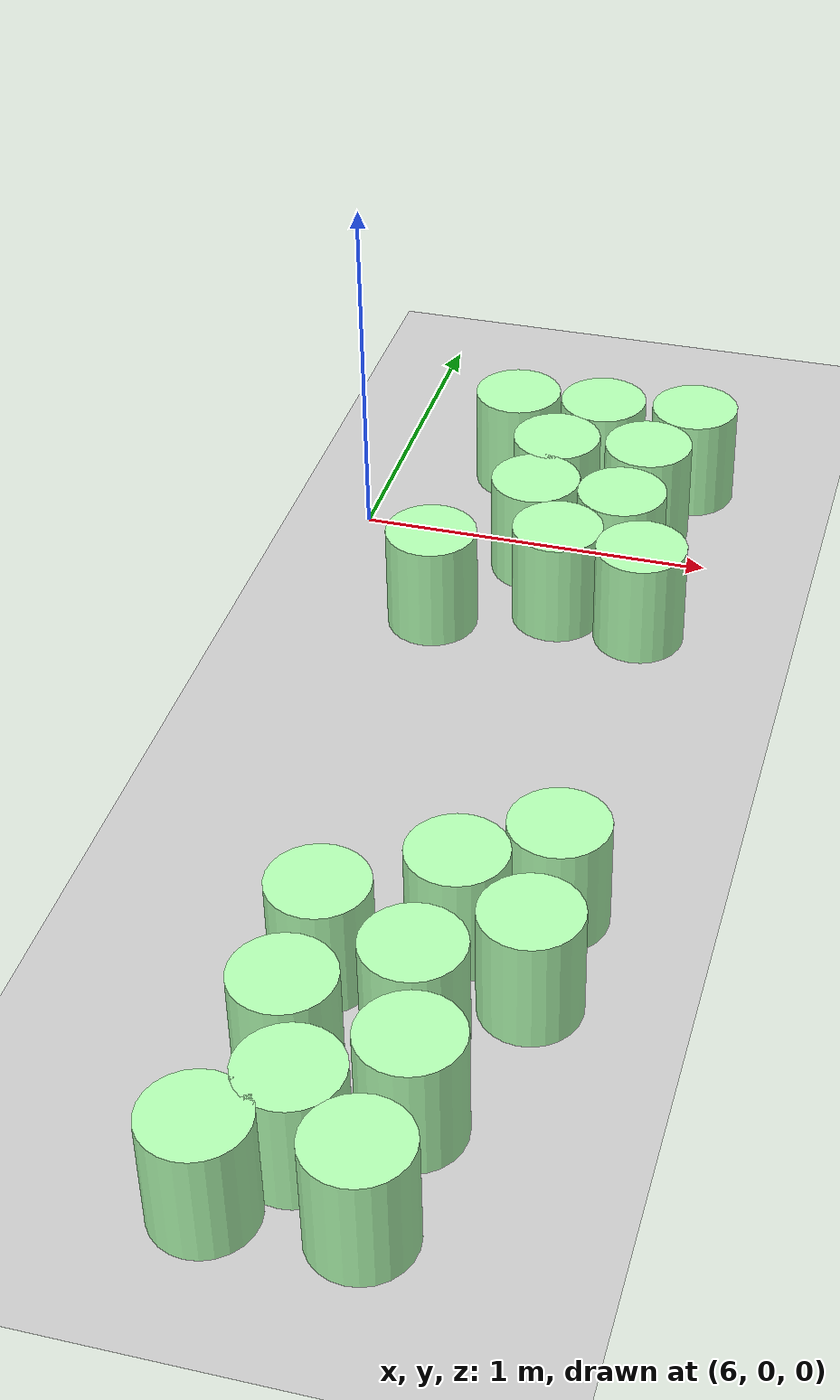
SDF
<sdf version="1.7">
 <world name="default">
  <model name="ground_plane">
   <static>1</static>
   <link name="link">
    <collision name="collision">
     <geometry><plane><normal>0 0 1</normal><size>100 100</size></plane></geometry>
     <surface><friction><ode><mu>100</mu><mu2>50</mu2></ode></friction></surface>
    </collision>
    <visual name="visual">
     <cast_shadows>0</cast_shadows>
     <geometry><plane><normal>0 0 1</normal><size>100 100</size></plane></geometry>
     <material>
      <script><uri>file://media/materials/scripts/gazebo.material</uri><name>Gazebo/Grey</name></script>
     </material>
    </visual>
   </link>
  </model>
  <model name="mhz_y_25_30_clone_29_clone_0">
   <link name="link">
    <inertial>
     <mass>1</mass>
     <inertia><ixx>0.145833</ixx><ixy>0</ixy><ixz>0</ixz><iyy>0.145833</iyy><iyz>0</iyz><izz>0.125</izz></inertia>
    </inertial>
    <visual name="visual">
     <geometry><cylinder><radius>0.125</radius><length>0.3</length></cylinder></geometry>
     <material>
      <script><name>Gazebo/Grey</name><uri>file://media/materials/scripts/gazebo.material</uri></script>
      <shader type="pixel"><normal_map>__default__</normal_map></shader>
      <ambient>0 1 0 0</ambient>
      <diffuse>0.7 1 0.7 1</diffuse>
      <specular>0.01 0.01 0.01 1</specular>
      <emissive>0 0 0 1</emissive>
     </material>
    </visual>
    <collision name="collision">
     <geometry><cylinder><radius>0.125</radius><length>0.3</length></cylinder></geometry>
     <surface>
      <friction>
       <ode><mu>1</mu><mu2>1</mu2><fdir1>0 0 0</fdir1><slip1>0</slip1><slip2>0</slip2></ode>
       <torsional>
        <coefficient>1</coefficient>
        <patch_radius>0</patch_radius>
        <surface_radius>0</surface_radius>
        <use_patch_radius>1</use_patch_radius>
        <ode><slip>0</slip></ode>
       </torsional>
      </friction>
      <bounce><restitution_coefficient>0</restitution_coefficient><threshold>1e+06</threshold></bounce>
      <contact>
       <collide_without_contact>0</collide_without_contact>
       <collide_without_contact_bitmask>1</collide_without_contact_bitmask>
       <collide_bitmask>1</collide_bitmask>
       <ode>
        <soft_cfm>0</soft_cfm>
        <soft_erp>0.2</soft_erp>
        <kp>1e+13</kp>
        <kd>1</kd>
        <max_vel>0.01</max_vel>
        <min_depth>0</min_depth>
       </ode>
       <bullet>
        <split_impulse>1</split_impulse>
        <split_impulse_penetration_threshold>-0.01</split_impulse_penetration_threshold>
        <soft_cfm>0</soft_cfm>
        <soft_erp>0.2</soft_erp>
        <kp>1e+13</kp>
        <kd>1</kd>
       </bullet>
      </contact>
     </surface>
    </collision>
   </link>
   <static>1</static>
   <pose>6.36504 0.343388 0.14679 0 -0 0</pose>
  </model>
  <model name="mhz_y_25_30_clone_29_clone_clone">
   <link name="link">
    <inertial>
     <mass>1</mass>
     <inertia><ixx>0.145833</ixx><ixy>0</ixy><ixz>0</ixz><iyy>0.145833</iyy><iyz>0</iyz><izz>0.125</izz></inertia>
    </inertial>
    <visual name="visual">
     <geometry><cylinder><radius>0.125</radius><length>0.3</length></cylinder></geometry>
     <material>
      <script><name>Gazebo/Grey</name><uri>file://media/materials/scripts/gazebo.material</uri></script>
      <shader type="pixel"><normal_map>__default__</normal_map></shader>
      <ambient>0 1 0 0</ambient>
      <diffuse>0.7 1 0.7 1</diffuse>
      <specular>0.01 0.01 0.01 1</specular>
      <emissive>0 0 0 1</emissive>
     </material>
    </visual>
    <collision name="collision">
     <geometry><cylinder><radius>0.125</radius><length>0.3</length></cylinder></geometry>
     <surface>
      <friction>
       <ode><mu>1</mu><mu2>1</mu2><fdir1>0 0 0</fdir1><slip1>0</slip1><slip2>0</slip2></ode>
       <torsional>
        <coefficient>1</coefficient>
        <patch_radius>0</patch_radius>
        <surface_radius>0</surface_radius>
        <use_patch_radius>1</use_patch_radius>
        <ode><slip>0</slip></ode>
       </torsional>
      </friction>
      <bounce><restitution_coefficient>0</restitution_coefficient><threshold>1e+06</threshold></bounce>
      <contact>
       <collide_without_contact>0</collide_without_contact>
       <collide_without_contact_bitmask>1</collide_without_contact_bitmask>
       <collide_bitmask>1</collide_bitmask>
       <ode>
        <soft_cfm>0</soft_cfm>
        <soft_erp>0.2</soft_erp>
        <kp>1e+13</kp>
        <kd>1</kd>
        <max_vel>0.01</max_vel>
        <min_depth>0</min_depth>
       </ode>
       <bullet>
        <split_impulse>1</split_impulse>
        <split_impulse_penetration_threshold>-0.01</split_impulse_penetration_threshold>
        <soft_cfm>0</soft_cfm>
        <soft_erp>0.2</soft_erp>
        <kp>1e+13</kp>
        <kd>1</kd>
       </bullet>
      </contact>
     </surface>
    </collision>
   </link>
   <static>1</static>
   <pose>6.31499 -0.426117 0.14679 0 -0 0</pose>
  </model>
  <model name="mhz_y_25_30_clone_29_clone_clone_clone">
   <link name="link">
    <inertial>
     <mass>1</mass>
     <inertia><ixx>0.145833</ixx><ixy>0</ixy><ixz>0</ixz><iyy>0.145833</iyy><iyz>0</iyz><izz>0.125</izz></inertia>
    </inertial>
    <visual name="visual">
     <geometry><cylinder><radius>0.125</radius><length>0.3</length></cylinder></geometry>
     <material>
      <script><name>Gazebo/Grey</name><uri>file://media/materials/scripts/gazebo.material</uri></script>
      <shader type="pixel"><normal_map>__default__</normal_map></shader>
      <ambient>0 1 0 0</ambient>
      <diffuse>0.7 1 0.7 1</diffuse>
      <specular>0.01 0.01 0.01 1</specular>
      <emissive>0 0 0 1</emissive>
     </material>
    </visual>
    <collision name="collision">
     <geometry><cylinder><radius>0.125</radius><length>0.3</length></cylinder></geometry>
     <surface>
      <friction>
       <ode><mu>1</mu><mu2>1</mu2><fdir1>0 0 0</fdir1><slip1>0</slip1><slip2>0</slip2></ode>
       <torsional>
        <coefficient>1</coefficient>
        <patch_radius>0</patch_radius>
        <surface_radius>0</surface_radius>
        <use_patch_radius>1</use_patch_radius>
        <ode><slip>0</slip></ode>
       </torsional>
      </friction>
      <bounce><restitution_coefficient>0</restitution_coefficient><threshold>1e+06</threshold></bounce>
      <contact>
       <collide_without_contact>0</collide_without_contact>
       <collide_without_contact_bitmask>1</collide_without_contact_bitmask>
       <collide_bitmask>1</collide_bitmask>
       <ode>
        <soft_cfm>0</soft_cfm>
        <soft_erp>0.2</soft_erp>
        <kp>1e+13</kp>
        <kd>1</kd>
        <max_vel>0.01</max_vel>
        <min_depth>0</min_depth>
       </ode>
       <bullet>
        <split_impulse>1</split_impulse>
        <split_impulse_penetration_threshold>-0.01</split_impulse_penetration_threshold>
        <soft_cfm>0</soft_cfm>
        <soft_erp>0.2</soft_erp>
        <kp>1e+13</kp>
        <kd>1</kd>
       </bullet>
      </contact>
     </surface>
    </collision>
   </link>
   <static>1</static>
   <pose>6.53399 0.127689 0.14679 0 -0 0</pose>
  </model>
  <model name="mhz_y_25_30_clone_29_clone_clone_clone_0">
   <link name="link">
    <inertial>
     <mass>1</mass>
     <inertia><ixx>0.145833</ixx><ixy>0</ixy><ixz>0</ixz><iyy>0.145833</iyy><iyz>0</iyz><izz>0.125</izz></inertia>
    </inertial>
    <visual name="visual">
     <geometry><cylinder><radius>0.125</radius><length>0.3</length></cylinder></geometry>
     <material>
      <script><name>Gazebo/Grey</name><uri>file://media/materials/scripts/gazebo.material</uri></script>
      <shader type="pixel"><normal_map>__default__</normal_map></shader>
      <ambient>0 1 0 0</ambient>
      <diffuse>0.7 1 0.7 1</diffuse>
      <specular>0.01 0.01 0.01 1</specular>
      <emissive>0 0 0 1</emissive>
     </material>
    </visual>
    <collision name="collision">
     <geometry><cylinder><radius>0.125</radius><length>0.3</length></cylinder></geometry>
     <surface>
      <friction>
       <ode><mu>1</mu><mu2>1</mu2><fdir1>0 0 0</fdir1><slip1>0</slip1><slip2>0</slip2></ode>
       <torsional>
        <coefficient>1</coefficient>
        <patch_radius>0</patch_radius>
        <surface_radius>0</surface_radius>
        <use_patch_radius>1</use_patch_radius>
        <ode><slip>0</slip></ode>
       </torsional>
      </friction>
      <bounce><restitution_coefficient>0</restitution_coefficient><threshold>1e+06</threshold></bounce>
      <contact>
       <collide_without_contact>0</collide_without_contact>
       <collide_without_contact_bitmask>1</collide_without_contact_bitmask>
       <collide_bitmask>1</collide_bitmask>
       <ode>
        <soft_cfm>0</soft_cfm>
        <soft_erp>0.2</soft_erp>
        <kp>1e+13</kp>
        <kd>1</kd>
        <max_vel>0.01</max_vel>
        <min_depth>0</min_depth>
       </ode>
       <bullet>
        <split_impulse>1</split_impulse>
        <split_impulse_penetration_threshold>-0.01</split_impulse_penetration_threshold>
        <soft_cfm>0</soft_cfm>
        <soft_erp>0.2</soft_erp>
        <kp>1e+13</kp>
        <kd>1</kd>
       </bullet>
      </contact>
     </surface>
    </collision>
   </link>
   <static>1</static>
   <pose>6.5279 -0.101579 0.14679 0 -0 0</pose>
  </model>
  <model name="mhz_y_25_30_clone_29_clone_clone_clone_1">
   <link name="link">
    <inertial>
     <mass>1</mass>
     <inertia><ixx>0.145833</ixx><ixy>0</ixy><ixz>0</ixz><iyy>0.145833</iyy><iyz>0</iyz><izz>0.125</izz></inertia>
    </inertial>
    <visual name="visual">
     <geometry><cylinder><radius>0.125</radius><length>0.3</length></cylinder></geometry>
     <material>
      <script><name>Gazebo/Grey</name><uri>file://media/materials/scripts/gazebo.material</uri></script>
      <shader type="pixel"><normal_map>__default__</normal_map></shader>
      <ambient>0 1 0 0</ambient>
      <diffuse>0.7 1 0.7 1</diffuse>
      <specular>0.01 0.01 0.01 1</specular>
      <emissive>0 0 0 1</emissive>
     </material>
    </visual>
    <collision name="collision">
     <geometry><cylinder><radius>0.125</radius><length>0.3</length></cylinder></geometry>
     <surface>
      <friction>
       <ode><mu>1</mu><mu2>1</mu2><fdir1>0 0 0</fdir1><slip1>0</slip1><slip2>0</slip2></ode>
       <torsional>
        <coefficient>1</coefficient>
        <patch_radius>0</patch_radius>
        <surface_radius>0</surface_radius>
        <use_patch_radius>1</use_patch_radius>
        <ode><slip>0</slip></ode>
       </torsional>
      </friction>
      <bounce><restitution_coefficient>0</restitution_coefficient><threshold>1e+06</threshold></bounce>
      <contact>
       <collide_without_contact>0</collide_without_contact>
       <collide_without_contact_bitmask>1</collide_without_contact_bitmask>
       <collide_bitmask>1</collide_bitmask>
       <ode>
        <soft_cfm>0</soft_cfm>
        <soft_erp>0.2</soft_erp>
        <kp>1e+13</kp>
        <kd>1</kd>
        <max_vel>0.01</max_vel>
        <min_depth>0</min_depth>
       </ode>
       <bullet>
        <split_impulse>1</split_impulse>
        <split_impulse_penetration_threshold>-0.01</split_impulse_penetration_threshold>
        <soft_cfm>0</soft_cfm>
        <soft_erp>0.2</soft_erp>
        <kp>1e+13</kp>
        <kd>1</kd>
       </bullet>
      </contact>
     </surface>
    </collision>
   </link>
   <static>1</static>
   <pose>6.61987 0.35872 0.14679 0 -0 0</pose>
  </model>
  <model name="mhz_y_25_30_clone_29_clone_clone_clone_1_clone">
   <link name="link">
    <inertial>
     <mass>1</mass>
     <inertia><ixx>0.145833</ixx><ixy>0</ixy><ixz>0</ixz><iyy>0.145833</iyy><iyz>0</iyz><izz>0.125</izz></inertia>
    </inertial>
    <visual name="visual">
     <geometry><cylinder><radius>0.125</radius><length>0.3</length></cylinder></geometry>
     <material>
      <script><name>Gazebo/Grey</name><uri>file://media/materials/scripts/gazebo.material</uri></script>
      <shader type="pixel"><normal_map>__default__</normal_map></shader>
      <ambient>0 1 0 0</ambient>
      <diffuse>0.7 1 0.7 1</diffuse>
      <specular>0.01 0.01 0.01 1</specular>
      <emissive>0 0 0 1</emissive>
     </material>
    </visual>
    <collision name="collision">
     <geometry><cylinder><radius>0.125</radius><length>0.3</length></cylinder></geometry>
     <surface>
      <friction>
       <ode><mu>1</mu><mu2>1</mu2><fdir1>0 0 0</fdir1><slip1>0</slip1><slip2>0</slip2></ode>
       <torsional>
        <coefficient>1</coefficient>
        <patch_radius>0</patch_radius>
        <surface_radius>0</surface_radius>
        <use_patch_radius>1</use_patch_radius>
        <ode><slip>0</slip></ode>
       </torsional>
      </friction>
      <bounce><restitution_coefficient>0</restitution_coefficient><threshold>1e+06</threshold></bounce>
      <contact>
       <collide_without_contact>0</collide_without_contact>
       <collide_without_contact_bitmask>1</collide_without_contact_bitmask>
       <collide_bitmask>1</collide_bitmask>
       <ode>
        <soft_cfm>0</soft_cfm>
        <soft_erp>0.2</soft_erp>
        <kp>1e+13</kp>
        <kd>1</kd>
        <max_vel>0.01</max_vel>
        <min_depth>0</min_depth>
       </ode>
       <bullet>
        <split_impulse>1</split_impulse>
        <split_impulse_penetration_threshold>-0.01</split_impulse_penetration_threshold>
        <soft_cfm>0</soft_cfm>
        <soft_erp>0.2</soft_erp>
        <kp>1e+13</kp>
        <kd>1</kd>
       </bullet>
      </contact>
     </surface>
    </collision>
   </link>
   <static>1</static>
   <pose>6.79759 0.1525 0.14679 0 -0 0</pose>
  </model>
  <model name="mhz_y_25_30_clone_29_clone_clone_clone_1_clone_1">
   <link name="link">
    <inertial>
     <mass>1</mass>
     <inertia><ixx>0.145833</ixx><ixy>0</ixy><ixz>0</ixz><iyy>0.145833</iyy><iyz>0</iyz><izz>0.125</izz></inertia>
    </inertial>
    <visual name="visual">
     <geometry><cylinder><radius>0.125</radius><length>0.3</length></cylinder></geometry>
     <material>
      <script><name>Gazebo/Grey</name><uri>file://media/materials/scripts/gazebo.material</uri></script>
      <shader type="pixel"><normal_map>__default__</normal_map></shader>
      <ambient>0 1 0 0</ambient>
      <diffuse>0.7 1 0.7 1</diffuse>
      <specular>0.01 0.01 0.01 1</specular>
      <emissive>0 0 0 1</emissive>
     </material>
    </visual>
    <collision name="collision">
     <geometry><cylinder><radius>0.125</radius><length>0.3</length></cylinder></geometry>
     <surface>
      <friction>
       <ode><mu>1</mu><mu2>1</mu2><fdir1>0 0 0</fdir1><slip1>0</slip1><slip2>0</slip2></ode>
       <torsional>
        <coefficient>1</coefficient>
        <patch_radius>0</patch_radius>
        <surface_radius>0</surface_radius>
        <use_patch_radius>1</use_patch_radius>
        <ode><slip>0</slip></ode>
       </torsional>
      </friction>
      <bounce><restitution_coefficient>0</restitution_coefficient><threshold>1e+06</threshold></bounce>
      <contact>
       <collide_without_contact>0</collide_without_contact>
       <collide_without_contact_bitmask>1</collide_without_contact_bitmask>
       <collide_bitmask>1</collide_bitmask>
       <ode>
        <soft_cfm>0</soft_cfm>
        <soft_erp>0.2</soft_erp>
        <kp>1e+13</kp>
        <kd>1</kd>
        <max_vel>0.01</max_vel>
        <min_depth>0</min_depth>
       </ode>
       <bullet>
        <split_impulse>1</split_impulse>
        <split_impulse_penetration_threshold>-0.01</split_impulse_penetration_threshold>
        <soft_cfm>0</soft_cfm>
        <soft_erp>0.2</soft_erp>
        <kp>1e+13</kp>
        <kd>1</kd>
       </bullet>
      </contact>
     </surface>
    </collision>
   </link>
   <static>1</static>
   <pose>6.64393 -0.321376 0.14679 0 -0 0</pose>
  </model>
  <model name="mhz_y_25_30_clone_29_clone_clone_clone_1_clone_2">
   <link name="link">
    <inertial>
     <mass>1</mass>
     <inertia><ixx>0.145833</ixx><ixy>0</ixy><ixz>0</ixz><iyy>0.145833</iyy><iyz>0</iyz><izz>0.125</izz></inertia>
    </inertial>
    <visual name="visual">
     <geometry><cylinder><radius>0.125</radius><length>0.3</length></cylinder></geometry>
     <material>
      <script><name>Gazebo/Grey</name><uri>file://media/materials/scripts/gazebo.material</uri></script>
      <shader type="pixel"><normal_map>__default__</normal_map></shader>
      <ambient>0 1 0 0</ambient>
      <diffuse>0.7 1 0.7 1</diffuse>
      <specular>0.01 0.01 0.01 1</specular>
      <emissive>0 0 0 1</emissive>
     </material>
    </visual>
    <collision name="collision">
     <geometry><cylinder><radius>0.125</radius><length>0.3</length></cylinder></geometry>
     <surface>
      <friction>
       <ode><mu>1</mu><mu2>1</mu2><fdir1>0 0 0</fdir1><slip1>0</slip1><slip2>0</slip2></ode>
       <torsional>
        <coefficient>1</coefficient>
        <patch_radius>0</patch_radius>
        <surface_radius>0</surface_radius>
        <use_patch_radius>1</use_patch_radius>
        <ode><slip>0</slip></ode>
       </torsional>
      </friction>
      <bounce><restitution_coefficient>0</restitution_coefficient><threshold>1e+06</threshold></bounce>
      <contact>
       <collide_without_contact>0</collide_without_contact>
       <collide_without_contact_bitmask>1</collide_without_contact_bitmask>
       <collide_bitmask>1</collide_bitmask>
       <ode>
        <soft_cfm>0</soft_cfm>
        <soft_erp>0.2</soft_erp>
        <kp>1e+13</kp>
        <kd>1</kd>
        <max_vel>0.01</max_vel>
        <min_depth>0</min_depth>
       </ode>
       <bullet>
        <split_impulse>1</split_impulse>
        <split_impulse_penetration_threshold>-0.01</split_impulse_penetration_threshold>
        <soft_cfm>0</soft_cfm>
        <soft_erp>0.2</soft_erp>
        <kp>1e+13</kp>
        <kd>1</kd>
       </bullet>
      </contact>
     </surface>
    </collision>
   </link>
   <static>1</static>
   <pose>6.77671 -0.108143 0.14679 0 -0 0</pose>
  </model>
  <model name="mhz_y_25_30_clone_29_clone_clone_clone_1_clone_2_clone">
   <link name="link">
    <inertial>
     <mass>1</mass>
     <inertia><ixx>0.145833</ixx><ixy>0</ixy><ixz>0</ixz><iyy>0.145833</iyy><iyz>0</iyz><izz>0.125</izz></inertia>
    </inertial>
    <visual name="visual">
     <geometry><cylinder><radius>0.125</radius><length>0.3</length></cylinder></geometry>
     <material>
      <script><name>Gazebo/Grey</name><uri>file://media/materials/scripts/gazebo.material</uri></script>
      <shader type="pixel"><normal_map>__default__</normal_map></shader>
      <ambient>0 1 0 0</ambient>
      <diffuse>0.7 1 0.7 1</diffuse>
      <specular>0.01 0.01 0.01 1</specular>
      <emissive>0 0 0 1</emissive>
     </material>
    </visual>
    <collision name="collision">
     <geometry><cylinder><radius>0.125</radius><length>0.3</length></cylinder></geometry>
     <surface>
      <friction>
       <ode><mu>1</mu><mu2>1</mu2><fdir1>0 0 0</fdir1><slip1>0</slip1><slip2>0</slip2></ode>
       <torsional>
        <coefficient>1</coefficient>
        <patch_radius>0</patch_radius>
        <surface_radius>0</surface_radius>
        <use_patch_radius>1</use_patch_radius>
        <ode><slip>0</slip></ode>
       </torsional>
      </friction>
      <bounce><restitution_coefficient>0</restitution_coefficient><threshold>1e+06</threshold></bounce>
      <contact>
       <collide_without_contact>0</collide_without_contact>
       <collide_without_contact_bitmask>1</collide_without_contact_bitmask>
       <collide_bitmask>1</collide_bitmask>
       <ode>
        <soft_cfm>0</soft_cfm>
        <soft_erp>0.2</soft_erp>
        <kp>1e+13</kp>
        <kd>1</kd>
        <max_vel>0.01</max_vel>
        <min_depth>0</min_depth>
       </ode>
       <bullet>
        <split_impulse>1</split_impulse>
        <split_impulse_penetration_threshold>-0.01</split_impulse_penetration_threshold>
        <soft_cfm>0</soft_cfm>
        <soft_erp>0.2</soft_erp>
        <kp>1e+13</kp>
        <kd>1</kd>
       </bullet>
      </contact>
     </surface>
    </collision>
   </link>
   <static>1</static>
   <pose>6.88858 0.385365 0.14679 0 -0 0</pose>
  </model>
  <model name="mhz_y_25_30_clone_29_clone_clone_clone_1_clone_2_clone_11">
   <link name="link">
    <inertial>
     <mass>1</mass>
     <inertia><ixx>0.145833</ixx><ixy>0</ixy><ixz>0</ixz><iyy>0.145833</iyy><iyz>0</iyz><izz>0.125</izz></inertia>
    </inertial>
    <visual name="visual">
     <geometry><cylinder><radius>0.125</radius><length>0.3</length></cylinder></geometry>
     <material>
      <script><name>Gazebo/Grey</name><uri>file://media/materials/scripts/gazebo.material</uri></script>
      <shader type="pixel"><normal_map>__default__</normal_map></shader>
      <ambient>0 1 0 0</ambient>
      <diffuse>0.7 1 0.7 1</diffuse>
      <specular>0.01 0.01 0.01 1</specular>
      <emissive>0 0 0 1</emissive>
     </material>
    </visual>
    <collision name="collision">
     <geometry><cylinder><radius>0.125</radius><length>0.3</length></cylinder></geometry>
     <surface>
      <friction>
       <ode><mu>1</mu><mu2>1</mu2><fdir1>0 0 0</fdir1><slip1>0</slip1><slip2>0</slip2></ode>
       <torsional>
        <coefficient>1</coefficient>
        <patch_radius>0</patch_radius>
        <surface_radius>0</surface_radius>
        <use_patch_radius>1</use_patch_radius>
        <ode><slip>0</slip></ode>
       </torsional>
      </friction>
      <bounce><restitution_coefficient>0</restitution_coefficient><threshold>1e+06</threshold></bounce>
      <contact>
       <collide_without_contact>0</collide_without_contact>
       <collide_without_contact_bitmask>1</collide_without_contact_bitmask>
       <collide_bitmask>1</collide_bitmask>
       <ode>
        <soft_cfm>0</soft_cfm>
        <soft_erp>0.2</soft_erp>
        <kp>1e+13</kp>
        <kd>1</kd>
        <max_vel>0.01</max_vel>
        <min_depth>0</min_depth>
       </ode>
       <bullet>
        <split_impulse>1</split_impulse>
        <split_impulse_penetration_threshold>-0.01</split_impulse_penetration_threshold>
        <soft_cfm>0</soft_cfm>
        <soft_erp>0.2</soft_erp>
        <kp>1e+13</kp>
        <kd>1</kd>
       </bullet>
      </contact>
     </surface>
    </collision>
   </link>
   <static>1</static>
   <pose>6.88488 -0.359497 0.14679 0 -0 0</pose>
  </model>
  <model name="mhz_y_25_30_clone_29_clone_clone_clone_1_clone_2_clone_8_clone_clone_clone_0_clone_1_clone_clone_0_clone_0_clone_clone_1_clone">
   <link name="link">
    <inertial>
     <mass>1</mass>
     <inertia><ixx>0.145833</ixx><ixy>0</ixy><ixz>0</ixz><iyy>0.145833</iyy><iyz>0</iyz><izz>0.125</izz></inertia>
    </inertial>
    <visual name="visual">
     <geometry><cylinder><radius>0.125</radius><length>0.3</length></cylinder></geometry>
     <material>
      <script><name>Gazebo/Grey</name><uri>file://media/materials/scripts/gazebo.material</uri></script>
      <shader type="pixel"><normal_map>__default__</normal_map></shader>
      <ambient>0 1 0 0</ambient>
      <diffuse>0.7 1 0.7 1</diffuse>
      <specular>0.01 0.01 0.01 1</specular>
      <emissive>0 0 0 1</emissive>
     </material>
    </visual>
    <collision name="collision">
     <geometry><cylinder><radius>0.125</radius><length>0.3</length></cylinder></geometry>
     <surface>
      <friction>
       <ode><mu>1</mu><mu2>1</mu2><fdir1>0 0 0</fdir1><slip1>0</slip1><slip2>0</slip2></ode>
       <torsional>
        <coefficient>1</coefficient>
        <patch_radius>0</patch_radius>
        <surface_radius>0</surface_radius>
        <use_patch_radius>1</use_patch_radius>
        <ode><slip>0</slip></ode>
       </torsional>
      </friction>
      <bounce><restitution_coefficient>0</restitution_coefficient><threshold>1e+06</threshold></bounce>
      <contact>
       <collide_without_contact>0</collide_without_contact>
       <collide_without_contact_bitmask>1</collide_without_contact_bitmask>
       <collide_bitmask>1</collide_bitmask>
       <ode>
        <soft_cfm>0</soft_cfm>
        <soft_erp>0.2</soft_erp>
        <kp>1e+13</kp>
        <kd>1</kd>
        <max_vel>0.01</max_vel>
        <min_depth>0</min_depth>
       </ode>
       <bullet>
        <split_impulse>1</split_impulse>
        <split_impulse_penetration_threshold>-0.01</split_impulse_penetration_threshold>
        <soft_cfm>0</soft_cfm>
        <soft_erp>0.2</soft_erp>
        <kp>1e+13</kp>
        <kd>1</kd>
       </bullet>
      </contact>
     </surface>
    </collision>
   </link>
   <static>1</static>
   <pose>6.45314 -1.83193 0.14679 0 -0 0</pose>
  </model>
  <model name="mhz_y_25_30_clone_29_clone_clone_clone_1_clone_2_clone_8_clone_clone_clone_0_clone_1_clone_clone_0_clone_0_clone_clone_1_clone_0">
   <link name="link">
    <inertial>
     <mass>1</mass>
     <inertia><ixx>0.145833</ixx><ixy>0</ixy><ixz>0</ixz><iyy>0.145833</iyy><iyz>0</iyz><izz>0.125</izz></inertia>
    </inertial>
    <visual name="visual">
     <geometry><cylinder><radius>0.125</radius><length>0.3</length></cylinder></geometry>
     <material>
      <script><name>Gazebo/Grey</name><uri>file://media/materials/scripts/gazebo.material</uri></script>
      <shader type="pixel"><normal_map>__default__</normal_map></shader>
      <ambient>0 1 0 0</ambient>
      <diffuse>0.7 1 0.7 1</diffuse>
      <specular>0.01 0.01 0.01 1</specular>
      <emissive>0 0 0 1</emissive>
     </material>
    </visual>
    <collision name="collision">
     <geometry><cylinder><radius>0.125</radius><length>0.3</length></cylinder></geometry>
     <surface>
      <friction>
       <ode><mu>1</mu><mu2>1</mu2><fdir1>0 0 0</fdir1><slip1>0</slip1><slip2>0</slip2></ode>
       <torsional>
        <coefficient>1</coefficient>
        <patch_radius>0</patch_radius>
        <surface_radius>0</surface_radius>
        <use_patch_radius>1</use_patch_radius>
        <ode><slip>0</slip></ode>
       </torsional>
      </friction>
      <bounce><restitution_coefficient>0</restitution_coefficient><threshold>1e+06</threshold></bounce>
      <contact>
       <collide_without_contact>0</collide_without_contact>
       <collide_without_contact_bitmask>1</collide_without_contact_bitmask>
       <collide_bitmask>1</collide_bitmask>
       <ode>
        <soft_cfm>0</soft_cfm>
        <soft_erp>0.2</soft_erp>
        <kp>1e+13</kp>
        <kd>1</kd>
        <max_vel>0.01</max_vel>
        <min_depth>0</min_depth>
       </ode>
       <bullet>
        <split_impulse>1</split_impulse>
        <split_impulse_penetration_threshold>-0.01</split_impulse_penetration_threshold>
        <soft_cfm>0</soft_cfm>
        <soft_erp>0.2</soft_erp>
        <kp>1e+13</kp>
        <kd>1</kd>
       </bullet>
      </contact>
     </surface>
    </collision>
   </link>
   <static>1</static>
   <pose>6.46979 -2.12704 0.14679 0 -0 0</pose>
  </model>
  <model name="mhz_y_25_30_clone_29_clone_clone_clone_1_clone_2_clone_8_clone_clone_clone_0_clone_1_clone_clone_0_clone_0_clone_clone_1_clone_clone">
   <link name="link">
    <inertial>
     <mass>1</mass>
     <inertia><ixx>0.145833</ixx><ixy>0</ixy><ixz>0</ixz><iyy>0.145833</iyy><iyz>0</iyz><izz>0.125</izz></inertia>
    </inertial>
    <visual name="visual">
     <geometry><cylinder><radius>0.125</radius><length>0.3</length></cylinder></geometry>
     <material>
      <script><name>Gazebo/Grey</name><uri>file://media/materials/scripts/gazebo.material</uri></script>
      <shader type="pixel"><normal_map>__default__</normal_map></shader>
      <ambient>0 1 0 0</ambient>
      <diffuse>0.7 1 0.7 1</diffuse>
      <specular>0.01 0.01 0.01 1</specular>
      <emissive>0 0 0 1</emissive>
     </material>
    </visual>
    <collision name="collision">
     <geometry><cylinder><radius>0.125</radius><length>0.3</length></cylinder></geometry>
     <surface>
      <friction>
       <ode><mu>1</mu><mu2>1</mu2><fdir1>0 0 0</fdir1><slip1>0</slip1><slip2>0</slip2></ode>
       <torsional>
        <coefficient>1</coefficient>
        <patch_radius>0</patch_radius>
        <surface_radius>0</surface_radius>
        <use_patch_radius>1</use_patch_radius>
        <ode><slip>0</slip></ode>
       </torsional>
      </friction>
      <bounce><restitution_coefficient>0</restitution_coefficient><threshold>1e+06</threshold></bounce>
      <contact>
       <collide_without_contact>0</collide_without_contact>
       <collide_without_contact_bitmask>1</collide_without_contact_bitmask>
       <collide_bitmask>1</collide_bitmask>
       <ode>
        <soft_cfm>0</soft_cfm>
        <soft_erp>0.2</soft_erp>
        <kp>1e+13</kp>
        <kd>1</kd>
        <max_vel>0.01</max_vel>
        <min_depth>0</min_depth>
       </ode>
       <bullet>
        <split_impulse>1</split_impulse>
        <split_impulse_penetration_threshold>-0.01</split_impulse_penetration_threshold>
        <soft_cfm>0</soft_cfm>
        <soft_erp>0.2</soft_erp>
        <kp>1e+13</kp>
        <kd>1</kd>
       </bullet>
      </contact>
     </surface>
    </collision>
   </link>
   <static>1</static>
   <pose>6.56998 -2.3781 0.14679 0 -0 0</pose>
  </model>
  <model name="mhz_y_25_30_clone_29_clone_clone_clone_1_clone_2_clone_8_clone_clone_clone_0_clone_1_clone_clone_0_clone_0_clone_clone_1_clone_clone_clone">
   <link name="link">
    <inertial>
     <mass>1</mass>
     <inertia><ixx>0.145833</ixx><ixy>0</ixy><ixz>0</ixz><iyy>0.145833</iyy><iyz>0</iyz><izz>0.125</izz></inertia>
    </inertial>
    <visual name="visual">
     <geometry><cylinder><radius>0.125</radius><length>0.3</length></cylinder></geometry>
     <material>
      <script><name>Gazebo/Grey</name><uri>file://media/materials/scripts/gazebo.material</uri></script>
      <shader type="pixel"><normal_map>__default__</normal_map></shader>
      <ambient>0 1 0 0</ambient>
      <diffuse>0.7 1 0.7 1</diffuse>
      <specular>0.01 0.01 0.01 1</specular>
      <emissive>0 0 0 1</emissive>
     </material>
    </visual>
    <collision name="collision">
     <geometry><cylinder><radius>0.125</radius><length>0.3</length></cylinder></geometry>
     <surface>
      <friction>
       <ode><mu>1</mu><mu2>1</mu2><fdir1>0 0 0</fdir1><slip1>0</slip1><slip2>0</slip2></ode>
       <torsional>
        <coefficient>1</coefficient>
        <patch_radius>0</patch_radius>
        <surface_radius>0</surface_radius>
        <use_patch_radius>1</use_patch_radius>
        <ode><slip>0</slip></ode>
       </torsional>
      </friction>
      <bounce><restitution_coefficient>0</restitution_coefficient><threshold>1e+06</threshold></bounce>
      <contact>
       <collide_without_contact>0</collide_without_contact>
       <collide_without_contact_bitmask>1</collide_without_contact_bitmask>
       <collide_bitmask>1</collide_bitmask>
       <ode>
        <soft_cfm>0</soft_cfm>
        <soft_erp>0.2</soft_erp>
        <kp>1e+13</kp>
        <kd>1</kd>
        <max_vel>0.01</max_vel>
        <min_depth>0</min_depth>
       </ode>
       <bullet>
        <split_impulse>1</split_impulse>
        <split_impulse_penetration_threshold>-0.01</split_impulse_penetration_threshold>
        <soft_cfm>0</soft_cfm>
        <soft_erp>0.2</soft_erp>
        <kp>1e+13</kp>
        <kd>1</kd>
       </bullet>
      </contact>
     </surface>
    </collision>
   </link>
   <static>1</static>
   <pose>6.71442 -1.96517 0.14679 0 -0 0</pose>
  </model>
  <model name="mhz_y_25_30_clone_29_clone_clone_clone_1_clone_2_clone_8_clone_clone_clone_0_clone_1_clone_clone_0_clone_0_clone_clone_1_clone_clone_clone_0">
   <link name="link">
    <inertial>
     <mass>1</mass>
     <inertia><ixx>0.145833</ixx><ixy>0</ixy><ixz>0</ixz><iyy>0.145833</iyy><iyz>0</iyz><izz>0.125</izz></inertia>
    </inertial>
    <visual name="visual">
     <geometry><cylinder><radius>0.125</radius><length>0.3</length></cylinder></geometry>
     <material>
      <script><name>Gazebo/Grey</name><uri>file://media/materials/scripts/gazebo.material</uri></script>
      <shader type="pixel"><normal_map>__default__</normal_map></shader>
      <ambient>0 1 0 0</ambient>
      <diffuse>0.7 1 0.7 1</diffuse>
      <specular>0.01 0.01 0.01 1</specular>
      <emissive>0 0 0 1</emissive>
     </material>
    </visual>
    <collision name="collision">
     <geometry><cylinder><radius>0.125</radius><length>0.3</length></cylinder></geometry>
     <surface>
      <friction>
       <ode><mu>1</mu><mu2>1</mu2><fdir1>0 0 0</fdir1><slip1>0</slip1><slip2>0</slip2></ode>
       <torsional>
        <coefficient>1</coefficient>
        <patch_radius>0</patch_radius>
        <surface_radius>0</surface_radius>
        <use_patch_radius>1</use_patch_radius>
        <ode><slip>0</slip></ode>
       </torsional>
      </friction>
      <bounce><restitution_coefficient>0</restitution_coefficient><threshold>1e+06</threshold></bounce>
      <contact>
       <collide_without_contact>0</collide_without_contact>
       <collide_without_contact_bitmask>1</collide_without_contact_bitmask>
       <collide_bitmask>1</collide_bitmask>
       <ode>
        <soft_cfm>0</soft_cfm>
        <soft_erp>0.2</soft_erp>
        <kp>1e+13</kp>
        <kd>1</kd>
        <max_vel>0.01</max_vel>
        <min_depth>0</min_depth>
       </ode>
       <bullet>
        <split_impulse>1</split_impulse>
        <split_impulse_penetration_threshold>-0.01</split_impulse_penetration_threshold>
        <soft_cfm>0</soft_cfm>
        <soft_erp>0.2</soft_erp>
        <kp>1e+13</kp>
        <kd>1</kd>
       </bullet>
      </contact>
     </surface>
    </collision>
   </link>
   <static>1</static>
   <pose>6.72799 -1.65281 0.14679 0 -0 0</pose>
  </model>
  <model name="mhz_y_25_30_clone_29_clone_clone_clone_1_clone_2_clone_8_clone_clone_clone_0_clone_1_clone_clone_0_clone_0_clone_clone_1_clone_clone_clone_0_clone">
   <link name="link">
    <inertial>
     <mass>1</mass>
     <inertia><ixx>0.145833</ixx><ixy>0</ixy><ixz>0</ixz><iyy>0.145833</iyy><iyz>0</iyz><izz>0.125</izz></inertia>
    </inertial>
    <visual name="visual">
     <geometry><cylinder><radius>0.125</radius><length>0.3</length></cylinder></geometry>
     <material>
      <script><name>Gazebo/Grey</name><uri>file://media/materials/scripts/gazebo.material</uri></script>
      <shader type="pixel"><normal_map>__default__</normal_map></shader>
      <ambient>0 1 0 0</ambient>
      <diffuse>0.7 1 0.7 1</diffuse>
      <specular>0.01 0.01 0.01 1</specular>
      <emissive>0 0 0 1</emissive>
     </material>
    </visual>
    <collision name="collision">
     <geometry><cylinder><radius>0.125</radius><length>0.3</length></cylinder></geometry>
     <surface>
      <friction>
       <ode><mu>1</mu><mu2>1</mu2><fdir1>0 0 0</fdir1><slip1>0</slip1><slip2>0</slip2></ode>
       <torsional>
        <coefficient>1</coefficient>
        <patch_radius>0</patch_radius>
        <surface_radius>0</surface_radius>
        <use_patch_radius>1</use_patch_radius>
        <ode><slip>0</slip></ode>
       </torsional>
      </friction>
      <bounce><restitution_coefficient>0</restitution_coefficient><threshold>1e+06</threshold></bounce>
      <contact>
       <collide_without_contact>0</collide_without_contact>
       <collide_without_contact_bitmask>1</collide_without_contact_bitmask>
       <collide_bitmask>1</collide_bitmask>
       <ode>
        <soft_cfm>0</soft_cfm>
        <soft_erp>0.2</soft_erp>
        <kp>1e+13</kp>
        <kd>1</kd>
        <max_vel>0.01</max_vel>
        <min_depth>0</min_depth>
       </ode>
       <bullet>
        <split_impulse>1</split_impulse>
        <split_impulse_penetration_threshold>-0.01</split_impulse_penetration_threshold>
        <soft_cfm>0</soft_cfm>
        <soft_erp>0.2</soft_erp>
        <kp>1e+13</kp>
        <kd>1</kd>
       </bullet>
      </contact>
     </surface>
    </collision>
   </link>
   <static>1</static>
   <pose>6.7845 -2.22514 0.14679 0 -0 0</pose>
  </model>
  <model name="mhz_y_25_30_clone_29_clone_clone_clone_1_clone_2_clone_8_clone_clone_clone_0_clone_1_clone_clone_0_clone_0_clone_clone_1_clone_clone_clone_clone">
   <link name="link">
    <inertial>
     <mass>1</mass>
     <inertia><ixx>0.145833</ixx><ixy>0</ixy><ixz>0</ixz><iyy>0.145833</iyy><iyz>0</iyz><izz>0.125</izz></inertia>
    </inertial>
    <visual name="visual">
     <geometry><cylinder><radius>0.125</radius><length>0.3</length></cylinder></geometry>
     <material>
      <script><name>Gazebo/Grey</name><uri>file://media/materials/scripts/gazebo.material</uri></script>
      <shader type="pixel"><normal_map>__default__</normal_map></shader>
      <ambient>0 1 0 0</ambient>
      <diffuse>0.7 1 0.7 1</diffuse>
      <specular>0.01 0.01 0.01 1</specular>
      <emissive>0 0 0 1</emissive>
     </material>
    </visual>
    <collision name="collision">
     <geometry><cylinder><radius>0.125</radius><length>0.3</length></cylinder></geometry>
     <surface>
      <friction>
       <ode><mu>1</mu><mu2>1</mu2><fdir1>0 0 0</fdir1><slip1>0</slip1><slip2>0</slip2></ode>
       <torsional>
        <coefficient>1</coefficient>
        <patch_radius>0</patch_radius>
        <surface_radius>0</surface_radius>
        <use_patch_radius>1</use_patch_radius>
        <ode><slip>0</slip></ode>
       </torsional>
      </friction>
      <bounce><restitution_coefficient>0</restitution_coefficient><threshold>1e+06</threshold></bounce>
      <contact>
       <collide_without_contact>0</collide_without_contact>
       <collide_without_contact_bitmask>1</collide_without_contact_bitmask>
       <collide_bitmask>1</collide_bitmask>
       <ode>
        <soft_cfm>0</soft_cfm>
        <soft_erp>0.2</soft_erp>
        <kp>1e+13</kp>
        <kd>1</kd>
        <max_vel>0.01</max_vel>
        <min_depth>0</min_depth>
       </ode>
       <bullet>
        <split_impulse>1</split_impulse>
        <split_impulse_penetration_threshold>-0.01</split_impulse_penetration_threshold>
        <soft_cfm>0</soft_cfm>
        <soft_erp>0.2</soft_erp>
        <kp>1e+13</kp>
        <kd>1</kd>
       </bullet>
      </contact>
     </surface>
    </collision>
   </link>
   <static>1</static>
   <pose>6.9405 -1.80669 0.14679 0 -0 0</pose>
  </model>
  <model name="mhz_y_25_30_clone_29_clone_clone_clone_1_clone_2_clone_8_clone_clone_clone_0_clone_1_clone_clone_clone_0_clone_1">
   <link name="link">
    <inertial>
     <mass>1</mass>
     <inertia><ixx>0.145833</ixx><ixy>0</ixy><ixz>0</ixz><iyy>0.145833</iyy><iyz>0</iyz><izz>0.125</izz></inertia>
    </inertial>
    <visual name="visual">
     <geometry><cylinder><radius>0.125</radius><length>0.3</length></cylinder></geometry>
     <material>
      <script><name>Gazebo/Grey</name><uri>file://media/materials/scripts/gazebo.material</uri></script>
      <shader type="pixel"><normal_map>__default__</normal_map></shader>
      <ambient>0 1 0 0</ambient>
      <diffuse>0.7 1 0.7 1</diffuse>
      <specular>0.01 0.01 0.01 1</specular>
      <emissive>0 0 0 1</emissive>
     </material>
    </visual>
    <collision name="collision">
     <geometry><cylinder><radius>0.125</radius><length>0.3</length></cylinder></geometry>
     <surface>
      <friction>
       <ode><mu>1</mu><mu2>1</mu2><fdir1>0 0 0</fdir1><slip1>0</slip1><slip2>0</slip2></ode>
       <torsional>
        <coefficient>1</coefficient>
        <patch_radius>0</patch_radius>
        <surface_radius>0</surface_radius>
        <use_patch_radius>1</use_patch_radius>
        <ode><slip>0</slip></ode>
       </torsional>
      </friction>
      <bounce><restitution_coefficient>0</restitution_coefficient><threshold>1e+06</threshold></bounce>
      <contact>
       <collide_without_contact>0</collide_without_contact>
       <collide_without_contact_bitmask>1</collide_without_contact_bitmask>
       <collide_bitmask>1</collide_bitmask>
       <ode>
        <soft_cfm>0</soft_cfm>
        <soft_erp>0.2</soft_erp>
        <kp>1e+13</kp>
        <kd>1</kd>
        <max_vel>0.01</max_vel>
        <min_depth>0</min_depth>
       </ode>
       <bullet>
        <split_impulse>1</split_impulse>
        <split_impulse_penetration_threshold>-0.01</split_impulse_penetration_threshold>
        <soft_cfm>0</soft_cfm>
        <soft_erp>0.2</soft_erp>
        <kp>1e+13</kp>
        <kd>1</kd>
       </bullet>
      </contact>
     </surface>
    </collision>
   </link>
   <static>1</static>
   <pose>6.42738 -2.55035 0.14679 0 -0 0</pose>
  </model>
  <model name="mhz_y_25_30_clone_29_clone_clone_clone_1_clone_2_clone_8_clone_clone_clone_0_clone_1_clone_clone_clone_0_clone_2">
   <link name="link">
    <inertial>
     <mass>1</mass>
     <inertia><ixx>0.145833</ixx><ixy>0</ixy><ixz>0</ixz><iyy>0.145833</iyy><iyz>0</iyz><izz>0.125</izz></inertia>
    </inertial>
    <visual name="visual">
     <geometry><cylinder><radius>0.125</radius><length>0.3</length></cylinder></geometry>
     <material>
      <script><name>Gazebo/Grey</name><uri>file://media/materials/scripts/gazebo.material</uri></script>
      <shader type="pixel"><normal_map>__default__</normal_map></shader>
      <ambient>0 1 0 0</ambient>
      <diffuse>0.7 1 0.7 1</diffuse>
      <specular>0.01 0.01 0.01 1</specular>
      <emissive>0 0 0 1</emissive>
     </material>
    </visual>
    <collision name="collision">
     <geometry><cylinder><radius>0.125</radius><length>0.3</length></cylinder></geometry>
     <surface>
      <friction>
       <ode><mu>1</mu><mu2>1</mu2><fdir1>0 0 0</fdir1><slip1>0</slip1><slip2>0</slip2></ode>
       <torsional>
        <coefficient>1</coefficient>
        <patch_radius>0</patch_radius>
        <surface_radius>0</surface_radius>
        <use_patch_radius>1</use_patch_radius>
        <ode><slip>0</slip></ode>
       </torsional>
      </friction>
      <bounce><restitution_coefficient>0</restitution_coefficient><threshold>1e+06</threshold></bounce>
      <contact>
       <collide_without_contact>0</collide_without_contact>
       <collide_without_contact_bitmask>1</collide_without_contact_bitmask>
       <collide_bitmask>1</collide_bitmask>
       <ode>
        <soft_cfm>0</soft_cfm>
        <soft_erp>0.2</soft_erp>
        <kp>1e+13</kp>
        <kd>1</kd>
        <max_vel>0.01</max_vel>
        <min_depth>0</min_depth>
       </ode>
       <bullet>
        <split_impulse>1</split_impulse>
        <split_impulse_penetration_threshold>-0.01</split_impulse_penetration_threshold>
        <soft_cfm>0</soft_cfm>
        <soft_erp>0.2</soft_erp>
        <kp>1e+13</kp>
        <kd>1</kd>
       </bullet>
      </contact>
     </surface>
    </collision>
   </link>
   <static>1</static>
   <pose>6.76477 -2.53074 0.14679 0 -0 0</pose>
  </model>
  <model name="mhz_y_25_30_clone_29_clone_clone_clone_1_clone_2_clone_8_clone_clone_clone_0_clone_1_clone_clone_clone_0_clone_2_clone">
   <link name="link">
    <inertial>
     <mass>1</mass>
     <inertia><ixx>0.145833</ixx><ixy>0</ixy><ixz>0</ixz><iyy>0.145833</iyy><iyz>0</iyz><izz>0.125</izz></inertia>
    </inertial>
    <visual name="visual">
     <geometry><cylinder><radius>0.125</radius><length>0.3</length></cylinder></geometry>
     <material>
      <script><name>Gazebo/Grey</name><uri>file://media/materials/scripts/gazebo.material</uri></script>
      <shader type="pixel"><normal_map>__default__</normal_map></shader>
      <ambient>0 1 0 0</ambient>
      <diffuse>0.7 1 0.7 1</diffuse>
      <specular>0.01 0.01 0.01 1</specular>
      <emissive>0 0 0 1</emissive>
     </material>
    </visual>
    <collision name="collision">
     <geometry><cylinder><radius>0.125</radius><length>0.3</length></cylinder></geometry>
     <surface>
      <friction>
       <ode><mu>1</mu><mu2>1</mu2><fdir1>0 0 0</fdir1><slip1>0</slip1><slip2>0</slip2></ode>
       <torsional>
        <coefficient>1</coefficient>
        <patch_radius>0</patch_radius>
        <surface_radius>0</surface_radius>
        <use_patch_radius>1</use_patch_radius>
        <ode><slip>0</slip></ode>
       </torsional>
      </friction>
      <bounce><restitution_coefficient>0</restitution_coefficient><threshold>1e+06</threshold></bounce>
      <contact>
       <collide_without_contact>0</collide_without_contact>
       <collide_without_contact_bitmask>1</collide_without_contact_bitmask>
       <collide_bitmask>1</collide_bitmask>
       <ode>
        <soft_cfm>0</soft_cfm>
        <soft_erp>0.2</soft_erp>
        <kp>1e+13</kp>
        <kd>1</kd>
        <max_vel>0.01</max_vel>
        <min_depth>0</min_depth>
       </ode>
       <bullet>
        <split_impulse>1</split_impulse>
        <split_impulse_penetration_threshold>-0.01</split_impulse_penetration_threshold>
        <soft_cfm>0</soft_cfm>
        <soft_erp>0.2</soft_erp>
        <kp>1e+13</kp>
        <kd>1</kd>
       </bullet>
      </contact>
     </surface>
    </collision>
   </link>
   <static>1</static>
   <pose>6.93242 -1.50335 0.14679 0 -0 0</pose>
  </model>
 </world>
</sdf>
